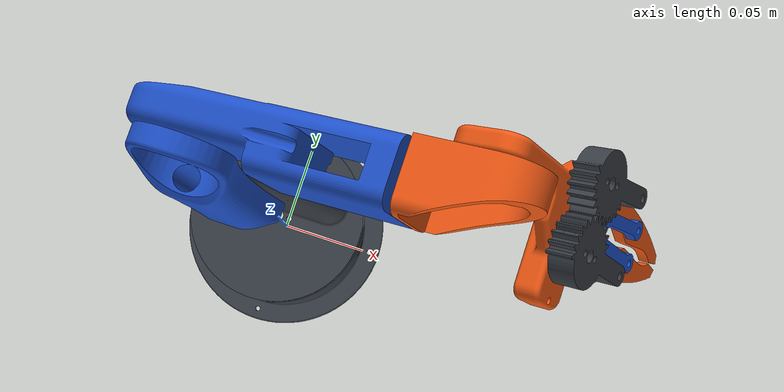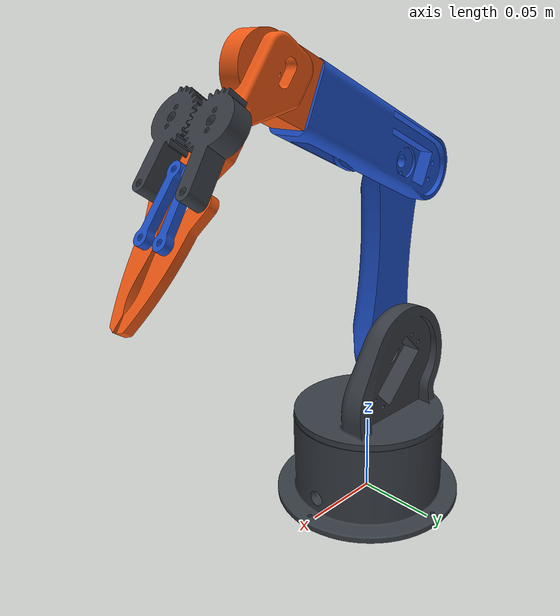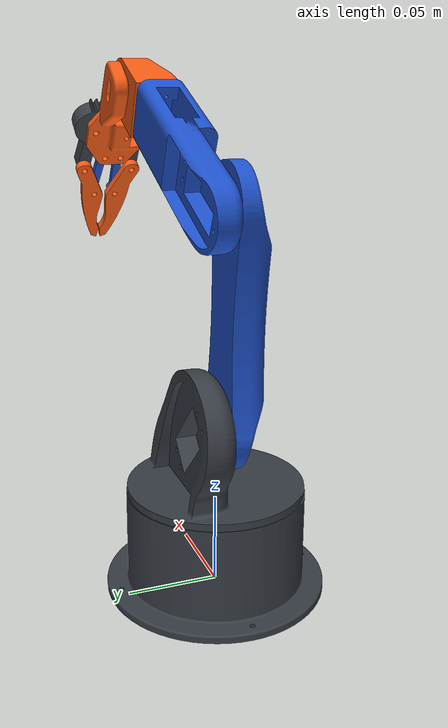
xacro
<?xml version="1.0"?>
<robot xmlns:xacro="http://www.ros.org/wiki/xacro" name="robot_arm">
  <!-- CAD-derived upper-arm joint spacing; remaining dimensions are provisional. -->
  <xacro:property name="upper_arm_length" value="0.12"/>

  <xacro:property name="gripper_open" value="0.75"/>

  <xacro:property name="pla_density" value="1240.0"/>

  <material name="dark_gray">
    <color rgba="0.22 0.24 0.27 1"/>
  </material>
  <material name="blue">
    <color rgba="0.12 0.32 0.80 1"/>
  </material>
  <material name="orange">
    <color rgba="0.95 0.35 0.08 1"/>
  </material>

  <link name="base_link">
    <inertial>
      <origin xyz="0.00107986407 -6.18358027e-07 0.0221277793" rpy="0 0 0"/>
      <mass value="${9.47078684e-05 * pla_density}"/>
      <inertia ixx="${1.28706199e-07 * pla_density}" ixy="${3.46682081e-12 * pla_density}" ixz="${3.75517752e-09 * pla_density}"
               iyy="${1.34701532e-07 * pla_density}" iyz="${1.60120083e-12 * pla_density}"
               izz="${2.05376811e-07 * pla_density}"/>
    </inertial>

    <visual>
      <!-- SolidWorks exported the mesh Y-up; rotate it into ROS Z-up. -->
      <origin xyz="0 0 0" rpy="1.5708 0 0"/>
      <geometry>
        <mesh
          filename="package://robot_arm_description/STL/base_link.stl"
          scale="1 1 1"/>
      </geometry>
      <material name="dark_gray"/>
    </visual>

    <collision>
      <origin xyz="0 -1.02849746e-07 0.0280000009" rpy="3.6732051e-06 -0 0"/>
      <geometry>
        <cylinder radius="0.0606250025" length="0.0560000017"/>
      </geometry>
    </collision>
  </link>

  <link name="waist_link">
    <inertial>
      <origin xyz="-0.00467023461 0.00793675396 0.0231640523" rpy="0 0 0"/>
      <mass value="${8.35641672e-05 * pla_density}"/>
      <inertia ixx="${6.2775338e-08 * pla_density}" ixy="${1.442602e-09 * pla_density}" ixz="${1.03593476e-08 * pla_density}"
               iyy="${8.8335047e-08 * pla_density}" iyz="${-7.61488194e-09 * pla_density}"
               izz="${6.83909909e-08 * pla_density}"/>
    </inertial>

    <visual>
      <!-- Rotate the Y-up CAD mesh into ROS Z-up, then yaw it into the CAD assembly orientation. -->
      <origin xyz="0 0 0" rpy="1.5708 0 1.5708"/>
      <geometry>
        <mesh
          filename="package://robot_arm_description/STL/waist_link.stl"
          scale="1 1 1"/>
      </geometry>
      <material name="dark_gray"/>
    </visual>

    <collision>
      <origin xyz="1.35541332e-07 4.97871113e-13 0.0369000174" rpy="1.5708 -0 1.5708"/>
      <geometry>
        <box size="0.0968577415 0.0738000348 0.0970000029"/>
      </geometry>
    </collision>
  </link>

  <joint name="base_yaw_joint" type="revolute">
    <parent link="base_link"/>
    <child link="waist_link"/>
    <!-- The CAD base is 56 mm tall, so place the waist directly on its top face. -->
    <origin xyz="0 0 0.056" rpy="0 0 0"/>
    <axis xyz="0 0 1"/>
    <limit lower="-3.1416" upper="3.1416" effort="10.0" velocity="1.0"/>
  </joint>

  <link name="upper_arm_link">
    <inertial>
      <origin xyz="0.0599999261 0.00268461785 5.18655088e-07" rpy="0 0 0"/>
      <mass value="${6.43360473e-05 * pla_density}"/>
      <inertia ixx="${9.29897451e-09 * pla_density}" ixy="${-3.55309654e-13 * pla_density}" ixz="${-4.47940028e-12 * pla_density}"
               iyy="${1.08720531e-07 * pla_density}" iyz="${-5.45582481e-14 * pla_density}"
               izz="${1.03835897e-07 * pla_density}"/>
    </inertial>

    <visual>
      <!--
        STEP-derived mesh transform about the shoulder-servo shaft. The STL origin
        is 120 mm from the shoulder pivot and 10.5 mm from the link center plane.
      -->
      <origin xyz="0.12 -0.0105 0" rpy="-1.5708 1.5708 0"/>
      <geometry>
        <mesh
          filename="package://robot_arm_description/STL/upper_arm_link.stl"
          scale="1 1 1"/>
      </geometry>
      <material name="blue"/>
    </visual>

    <collision>
      <origin xyz="0.0599999609 -2.2053394e-07 2.2039245e-07" rpy="1.57079265 1.57079265 3.14159265"/>
      <geometry>
        <box size="0.0419998914 0.16196901 0.0209999997"/>
      </geometry>
    </collision>
  </link>

  <joint name="shoulder_joint" type="revolute">
    <parent link="waist_link"/>
    <child link="upper_arm_link"/>
    <!-- Shoulder-servo shaft measured from RobotArmAssembly (1).STEP. -->
    <origin xyz="-0.01391 -0.0065 0.04028" rpy="3.1416 -1.503064 3.1416"/>
    <axis xyz="0 1 0"/>
    <limit lower="-1.5708" upper="1.5708" effort="10.0" velocity="1.0"/>
  </joint>

  <link name="forearm_link">
    <inertial>
      <origin xyz="0.0160694724 0.0163146104 -0.0445323533" rpy="0 0 0"/>
      <mass value="${5.72611052e-05 * pla_density}"/>
      <inertia ixx="${5.95331447e-08 * pla_density}" ixy="${2.59647282e-10 * pla_density}" ixz="${1.77838276e-08 * pla_density}"
               iyy="${6.99805381e-08 * pla_density}" iyz="${-7.1432358e-10 * pla_density}"
               izz="${1.71605271e-08 * pla_density}"/>
    </inertial>

    <visual>
      <origin xyz="0.008230 0.002500 0.033035"
              rpy="-1.570796 1.222882 0"/>
      <geometry>
        <mesh
          filename="package://robot_arm_description/STL/forearm_link.stl"
          scale="0.001 0.001 0.001"/>
      </geometry>
      <material name="blue"/>
    </visual>

    <collision>
      <origin xyz="0.0119116915 0.0160000062 -0.0331393786" rpy="-1.570796 1.222882 0"/>
      <geometry>
        <box size="0.124999993 0.037999997 0.027"/>
      </geometry>
    </collision>
  </link>

  <joint name="elbow_joint" type="revolute">
    <parent link="upper_arm_link"/>
    <child link="forearm_link"/>
    <!-- The upper arm extends along its link-frame +X axis. -->
    <origin xyz="${upper_arm_length} 0 0" rpy="0 0 0"/>
    <axis xyz="0 1 0"/>
    <limit lower="-2.0944" upper="2.0944" effort="10.0" velocity="1.0"/>
  </joint>

  <link name="wrist_link">
    <inertial>
      <origin xyz="-2.42085612e-05 0.00594423645 0.0195846505" rpy="0 0 0"/>
      <mass value="${1.56507039e-05 * pla_density}"/>
      <inertia ixx="${3.64554578e-09 * pla_density}" ixy="${-2.24179141e-12 * pla_density}" ixz="${-6.90925407e-12 * pla_density}"
               iyy="${4.86784764e-09 * pla_density}" iyz="${-3.94886004e-10 * pla_density}"
               izz="${2.41509829e-09 * pla_density}"/>
    </inertial>

    <visual name="wrist_link_visual">
      <origin xyz="0 0 0" rpy="0 0 0"/>
      <geometry>
        <mesh filename="package://robot_arm_description/STL/wrist_link.stl" scale="0.001 0.001 0.001"/>
      </geometry>
      <material name="orange"/>
    </visual>

    <collision>
      <origin xyz="0 0 0.023" rpy="0 -0 0"/>
      <geometry>
        <box size="0.033 0.028 0.046"/>
      </geometry>
    </collision>
  </link>

  <joint name="wrist_roll_joint" type="revolute">
    <parent link="forearm_link"/>
    <child link="wrist_link"/>
    <origin xyz="0.033726552 0.016000000 -0.093875834"
            rpy="-3.141592654 0.347914624 -3.141592654"/>
    <axis xyz="0 0 1"/>
    <!-- Provisional, not measured. -->
    <limit lower="-3.1416" upper="3.1416" effort="5.0" velocity="1.0"/>
  </joint>

  <link name="gripper_base_link">
    <inertial>
      <origin xyz="0.00318308193 0.00755952549 -0.0130397199" rpy="0 0 0"/>
      <mass value="${1.60468383e-05 * pla_density}"/>
      <inertia ixx="${7.26166118e-09 * pla_density}" ixy="${4.03840618e-10 * pla_density}" ixz="${-1.7881094e-09 * pla_density}"
               iyy="${9.01153601e-09 * pla_density}" iyz="${1.3403234e-09 * pla_density}"
               izz="${3.29863321e-09 * pla_density}"/>
    </inertial>

    <visual name="gripper_base_visual">
      <origin xyz="0 0 0" rpy="0 0 0"/>
      <geometry>
        <mesh filename="package://robot_arm_description/STL/gripper_base.stl" scale="0.001 0.001 0.001"/>
      </geometry>
      <material name="orange"/>
    </visual>

    <collision>
      <origin xyz="0.0116501546 0.0139999983 -0.0134966087" rpy="0 -0 0"/>
      <geometry>
        <box size="0.0532997427 0.0279999996 0.0770036621"/>
      </geometry>
    </collision>
  </link>

  <joint name="wrist_pitch_joint" type="revolute">
    <parent link="wrist_link"/>
    <child link="gripper_base_link"/>
    <origin xyz="0.034300380 0.013001510 0.047026012"
            rpy="-1.363351778 0 -1.570796327"/>
    <axis xyz="1 0 0"/>
    <!-- Provisional, not measured. -->
    <limit lower="-1.5708" upper="1.5708" effort="5.0" velocity="1.0"/>
  </joint>

  <link name="left_gear_link">
    <inertial>
      <origin xyz="0.00893746607 0.00149975966 0.00466186796" rpy="0 0 0"/>
      <mass value="${7.25980177e-06 * pla_density}"/>
      <inertia ixx="${3.27522228e-10 * pla_density}" ixy="${-1.55677746e-10 * pla_density}" ixz="${6.52164578e-11 * pla_density}"
               iyy="${1.72950633e-09 * pla_density}" iyz="${1.77821085e-11 * pla_density}"
               izz="${1.9344189e-09 * pla_density}"/>
    </inertial>

    <visual name="left_gear_visual">
      <origin xyz="0 0 0" rpy="0 0 0"/>
      <geometry>
        <mesh filename="package://robot_arm_description/STL/gripper_gear.stl" scale="0.001 0.001 0.001"/>
      </geometry>
      <material name="dark_gray"/>
    </visual>
    <visual name="left_connecting_link_visual">
      <origin xyz="0.035504505 0.008743617 0.004000000" rpy="-3.141592654 0 -0.009919099"/>
      <geometry>
        <mesh filename="package://robot_arm_description/STL/gripper_connecting_link.stl" scale="0.001 0.001 0.001"/>
      </geometry>
      <material name="blue"/>
    </visual>
  </link>

  <joint name="gripper_joint" type="revolute">
    <parent link="gripper_base_link"/>
    <child link="left_gear_link"/>
    <origin xyz="0.016900000 0 0" rpy="3.141592654 -1.570796327 -1.570796327"/>
    <axis xyz="0 0 1"/>
    <limit lower="0.0" upper="${gripper_open}" effort="5.0" velocity="1.0"/>
  </joint>

  <link name="left_finger_link">
    <inertial>
      <origin xyz="0.0141037757 0.00359027469 0.00224999852" rpy="0 0 0"/>
      <mass value="${2.69867188e-06 * pla_density}"/>
      <inertia ixx="${6.39119051e-11 * pla_density}" ixy="${-1.48211276e-10 * pla_density}" ixz="${-5.16987883e-26 * pla_density}"
               iyy="${7.24401326e-10 * pla_density}" iyz="${1.93870456e-26 * pla_density}"
               izz="${7.79205213e-10 * pla_density}"/>
    </inertial>

    <visual name="left_finger_visual">
      <origin xyz="0 0 0" rpy="0 0 0"/>
      <geometry>
        <mesh filename="package://robot_arm_description/STL/gripper_finger.stl" scale="0.001 0.001 0.001"/>
      </geometry>
      <material name="orange"/>
    </visual>

    <collision>
      <origin xyz="0.0165989647 0.00393498421 0.00224999852" rpy="0 -0 0"/>
      <geometry>
        <box size="0.0651637421 0.0178700542 0.00450000009"/>
      </geometry>
    </collision>
  </link>

  <joint name="left_finger_joint" type="revolute">
    <parent link="left_gear_link"/>
    <child link="left_finger_link"/>
    <origin xyz="0.040876871 0.004294937 0" rpy="-3.141592654 0 0.401119022"/>
    <axis xyz="0 0 1"/>
    <limit lower="0.0" upper="${gripper_open}" effort="5.0" velocity="1.0"/>
    <mimic joint="gripper_joint" multiplier="1.0" offset="0.0"/>
  </joint>

  <link name="right_gear_link">
    <inertial>
      <origin xyz="0.00880575529 0.00172047236 0.00533813509" rpy="0 0 0"/>
      <mass value="${7.25980177e-06 * pla_density}"/>
      <inertia ixx="${3.53535757e-10 * pla_density}" ixy="${-1.9232035e-10 * pla_density}" ixz="${-6.2671125e-11 * pla_density}"
               iyy="${1.67967579e-09 * pla_density}" iyz="${-2.20472731e-11 * pla_density}"
               izz="${1.91060191e-09 * pla_density}"/>
    </inertial>

    <visual name="right_gear_visual">
      <origin xyz="0 0 0" rpy="0 0 0"/>
      <geometry>
        <mesh filename="package://robot_arm_description/STL/gripper_gear.stl" scale="0.001 0.001 0.001"/>
      </geometry>
      <material name="dark_gray"/>
    </visual>
    <visual name="right_connecting_link_visual">
      <origin xyz="0.034336030 0.010701831 0.006000000" rpy="0 0 -3.125893888"/>
      <geometry>
        <mesh filename="package://robot_arm_description/STL/gripper_connecting_link.stl" scale="0.001 0.001 0.001"/>
      </geometry>
      <material name="blue"/>
    </visual>
  </link>

  <!-- Mirrored side. The gear Z axes are exactly anti-parallel, so +1 counter-rotates. -->
  <joint name="right_gripper_joint" type="revolute">
    <parent link="gripper_base_link"/>
    <child link="right_gear_link"/>
    <origin xyz="-0.009999717 -0.010000000 0" rpy="1.570796327 -1.444499427 3.141592654"/>
    <axis xyz="0 0 1"/>
    <limit lower="0.0" upper="${gripper_open}" effort="5.0" velocity="1.0"/>
    <mimic joint="gripper_joint" multiplier="1.0" offset="0.0"/>
  </joint>

  <link name="right_finger_link">
    <inertial>
      <origin xyz="0.0141037757 0.00359027469 0.00224999852" rpy="0 0 0"/>
      <mass value="${2.69867188e-06 * pla_density}"/>
      <inertia ixx="${6.39119051e-11 * pla_density}" ixy="${-1.48211276e-10 * pla_density}" ixz="${-5.16987883e-26 * pla_density}"
               iyy="${7.24401326e-10 * pla_density}" iyz="${1.93870456e-26 * pla_density}"
               izz="${7.79205213e-10 * pla_density}"/>
    </inertial>

    <visual name="right_finger_visual">
      <origin xyz="0 0 0" rpy="0 0 0"/>
      <geometry>
        <mesh filename="package://robot_arm_description/STL/gripper_finger.stl" scale="0.001 0.001 0.001"/>
      </geometry>
      <material name="orange"/>
    </visual>

    <collision>
      <origin xyz="0.0165989647 0.00393498421 0.00224999852" rpy="0 -0 0"/>
      <geometry>
        <box size="0.0651637421 0.0178700542 0.00450000009"/>
      </geometry>
    </collision>
  </link>

  <joint name="right_finger_joint" type="revolute">
    <parent link="right_gear_link"/>
    <child link="right_finger_link"/>
    <origin xyz="0.040292060 0.005472576 0.014500000" rpy="-3.141592654 0 0.520722397"/>
    <axis xyz="0 0 1"/>
    <limit lower="0.0" upper="${gripper_open}" effort="5.0" velocity="1.0"/>
    <mimic joint="gripper_joint" multiplier="1.0" offset="0.0"/>
  </joint>

</robot>
